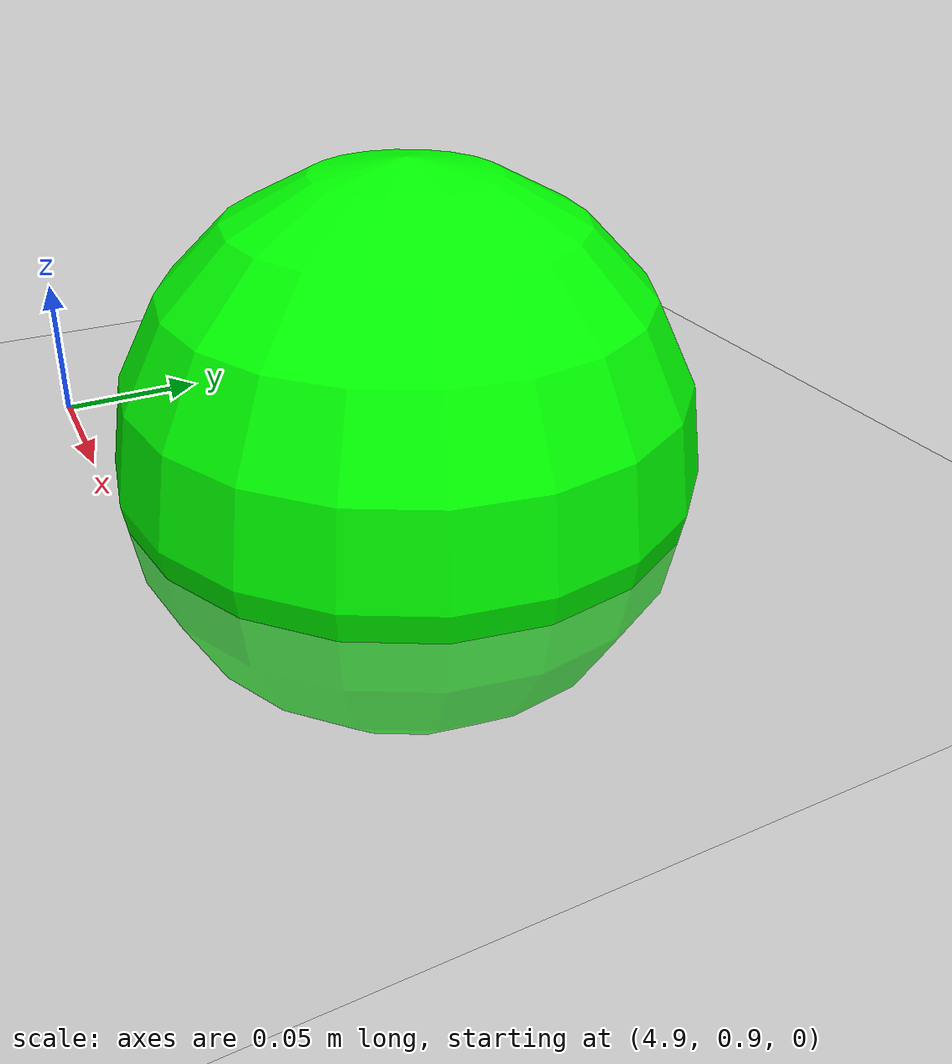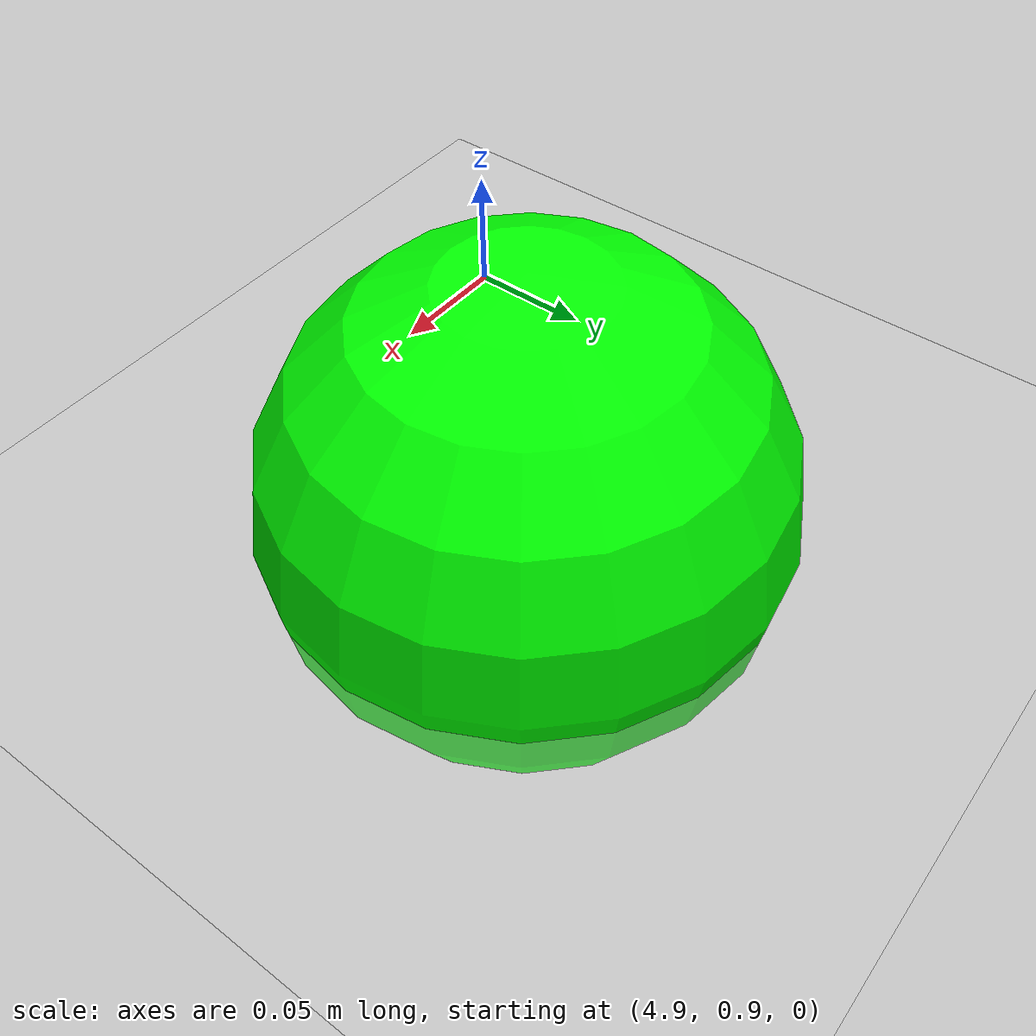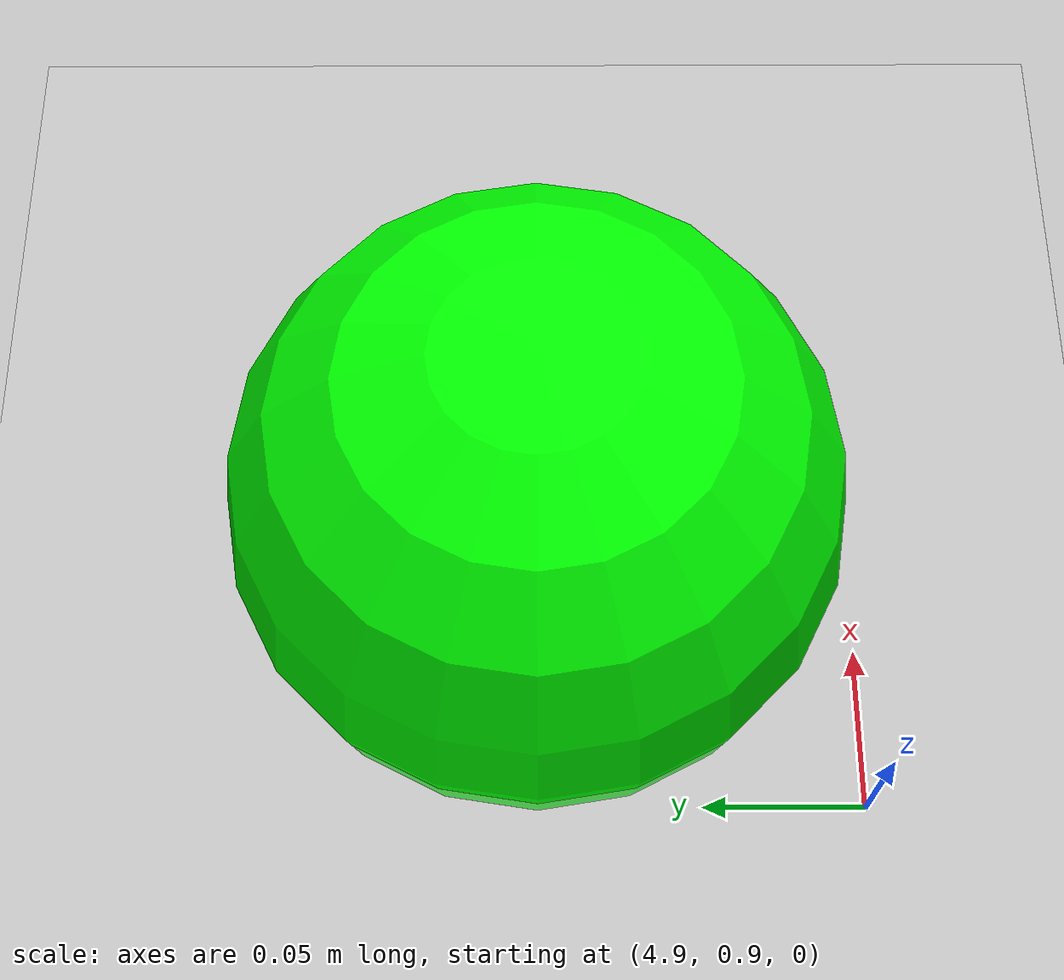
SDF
<?xml version="1.0" ?>
<sdf version="1.6">
  <world name="experiment_corner">
    <include>
      <uri>model://sun</uri>
    </include>
    <include>
      <uri>model://ground_plane</uri>
    </include>

    <!-- カメラ設定（シナリオ中心の俯瞰） -->
    <gui fullscreen='0'>
      <camera name='user_camera'>
        <pose>2.5 1.5 10.0 0 1.5708 0</pose>
        <view_controller>orbit</view_controller>
      </camera>
    </gui>

    <!-- ゴール地点 (5.0, 1.0) -->
    <model name='goal_marker'>
      <pose>5.0 1.0 0.01 0 0 0</pose>
      <static>true</static>
      <link name='link'>
        <visual name='center'>
          <geometry>
            <sphere><radius>0.1</radius></sphere>
          </geometry>
          <material>
            <ambient>0 1 0 1</ambient>
            <diffuse>0 1 0 1</diffuse>
            <emissive>0 0.3 0 1</emissive>
          </material>
        </visual>
      </link>
    </model>

    <!-- 物理設定 -->
    <physics name='default_physics' default='0' type='ode'>
      <gravity>0 0 -9.8066</gravity>
      <ode>
        <solver>
          <type>quick</type>
          <iters>50</iters>
          <sor>1.0</sor>
        </solver>
        <constraints>
          <cfm>0</cfm>
          <erp>0.2</erp>
          <contact_max_correcting_vel>100</contact_max_correcting_vel>
          <contact_surface_layer>0.001</contact_surface_layer>
        </constraints>
      </ode>
      <max_step_size>0.004</max_step_size>
      <real_time_factor>1</real_time_factor>
      <real_time_update_rate>250</real_time_update_rate>
    </physics>
  </world>
</sdf>
